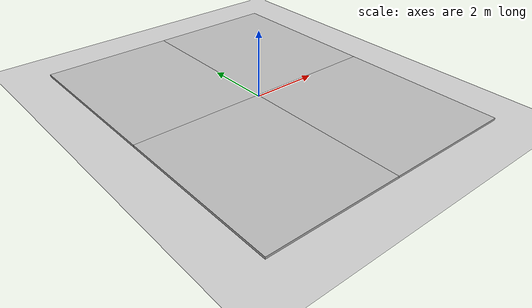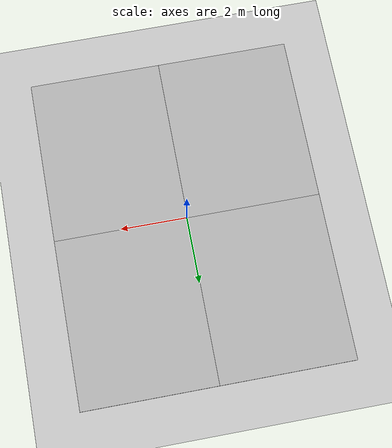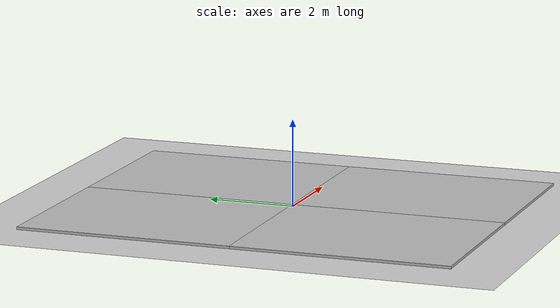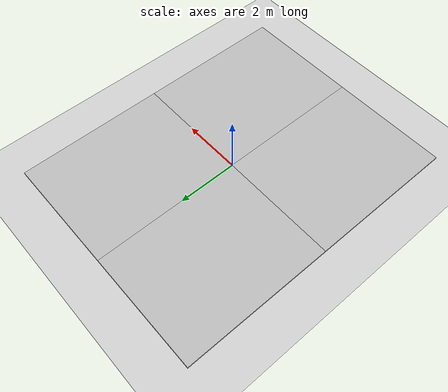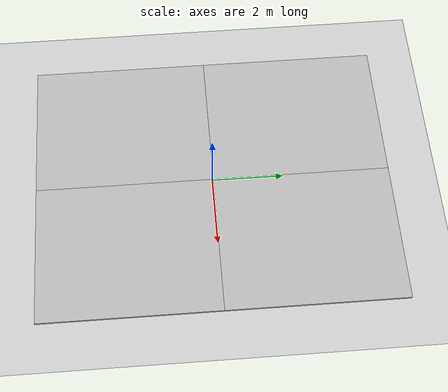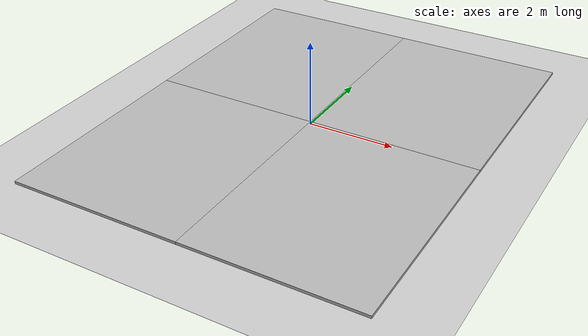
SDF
<sdf version="1.7">
 <world name="default">
  <scene>
   <sky><clouds><speed>12</speed></clouds></sky>
   <ambient>0.4 0.4 0.4 1</ambient>
   <background>0.7 0.7 0.7 1</background>
   <shadows>0</shadows>
  </scene>
  <light name="sun" type="directional">
   <pose>0 0 10 0 -0 0</pose>
   <diffuse>0.8 0.8 0.8 1</diffuse>
   <specular>0.2 0.2 0.2 1</specular>
   <attenuation>
    <range>1000</range>
    <constant>0.9</constant>
    <linear>0.01</linear>
    <quadratic>0.001</quadratic>
   </attenuation>
   <direction>-0.5 0.1 -0.9</direction>
   <spot><inner_angle>0</inner_angle><outer_angle>0</outer_angle><falloff>0</falloff></spot>
  </light>
  <model name="ground_plane">
   <static>1</static>
   <link name="link">
    <collision name="collision">
     <geometry><plane><normal>0 0 1</normal><size>100 100</size></plane></geometry>
     <surface><friction><ode><mu>100</mu><mu2>50</mu2></ode></friction></surface>
    </collision>
    <visual name="visual">
     <cast_shadows>0</cast_shadows>
     <geometry><plane><normal>0 0 1</normal><size>100 100</size></plane></geometry>
     <material>
      <script><uri>file://media/materials/scripts/gazebo.material</uri><name>Gazebo/Grey</name></script>
     </material>
    </visual>
    <velocity_decay><linear>0</linear><angular>0</angular></velocity_decay>
   </link>
  </model>
  <physics type="ode">
   <max_step_size>0.01</max_step_size>
   <real_time_factor>1</real_time_factor>
   <real_time_update_rate>100</real_time_update_rate>
  </physics>
  <scene><ambient>0.4 0.4 0.4 1</ambient><background>0.7 0.7 0.7 1</background><shadows>1</shadows></scene>
  <model name="mud_box_2">
   <static>1</static>
   <link name="link">
    <collision name="collision"><geometry><box><size>8 10 0.1</size></box></geometry></collision>
    <visual name="visual_1">
     <pose>-2 2.5 0 0 -0 0</pose>
     <cast_shadows>0</cast_shadows>
     <geometry><box><size>4 5 0.1</size></box></geometry>
     <material>
      <script>
       <uri>model://mud_box/materials/scripts</uri>
       <uri>model://mud_box/materials/textures</uri>
       <name>vrc/mud</name>
      </script>
     </material>
    </visual>
    <visual name="visual_2">
     <pose>2 2.5 0 0 -0 0</pose>
     <cast_shadows>0</cast_shadows>
     <geometry><box><size>4 5 0.1</size></box></geometry>
     <material>
      <script>
       <uri>model://mud_box/materials/scripts</uri>
       <uri>model://mud_box/materials/textures</uri>
       <name>vrc/mud</name>
      </script>
     </material>
    </visual>
    <visual name="visual_3">
     <pose>2 -2.5 0 0 -0 0</pose>
     <cast_shadows>0</cast_shadows>
     <geometry><box><size>4 5 0.1</size></box></geometry>
     <material>
      <script>
       <uri>model://mud_box/materials/scripts</uri>
       <uri>model://mud_box/materials/textures</uri>
       <name>vrc/mud</name>
      </script>
     </material>
    </visual>
    <visual name="visual_4">
     <pose>-2 -2.5 0 0 -0 0</pose>
     <cast_shadows>0</cast_shadows>
     <geometry><box><size>4 5 0.1</size></box></geometry>
     <material>
      <script>
       <uri>model://mud_box/materials/scripts</uri>
       <uri>model://mud_box/materials/textures</uri>
       <name>vrc/mud</name>
      </script>
     </material>
    </visual>
    <velocity_decay><linear>0</linear><angular>0</angular></velocity_decay>
   </link>
   <pose>-0.01205 0.017163 0 0 -0 0</pose>
  </model>
  <gravity>0 0 -9.8</gravity>
  <magnetic_field>6e-06 2.3e-05 -4.2e-05</magnetic_field>
  <atmosphere type="adiabatic"/>
  <spherical_coordinates>
   <surface_model>EARTH_WGS84</surface_model>
   <latitude_deg>0</latitude_deg>
   <longitude_deg>0</longitude_deg>
   <elevation>0</elevation>
   <heading_deg>0</heading_deg>
  </spherical_coordinates>
 </world>
</sdf>
